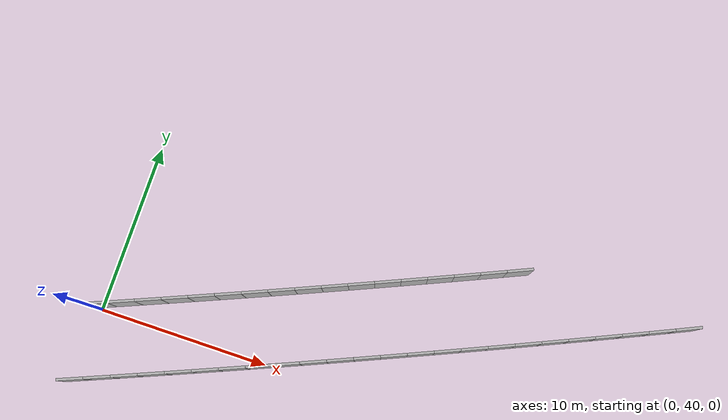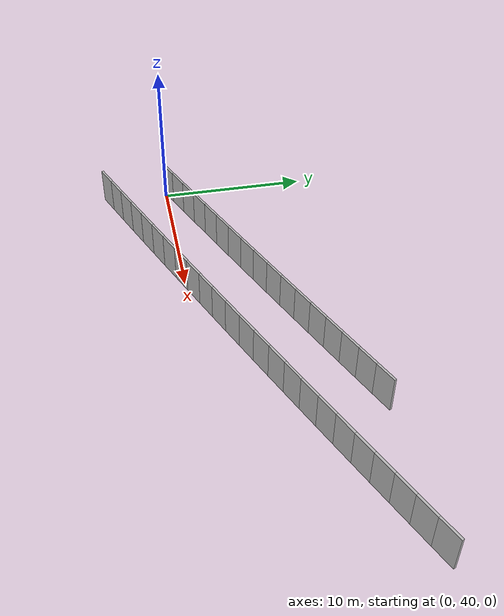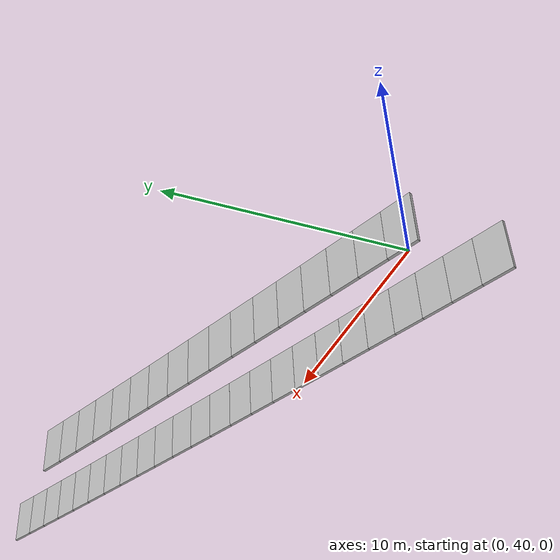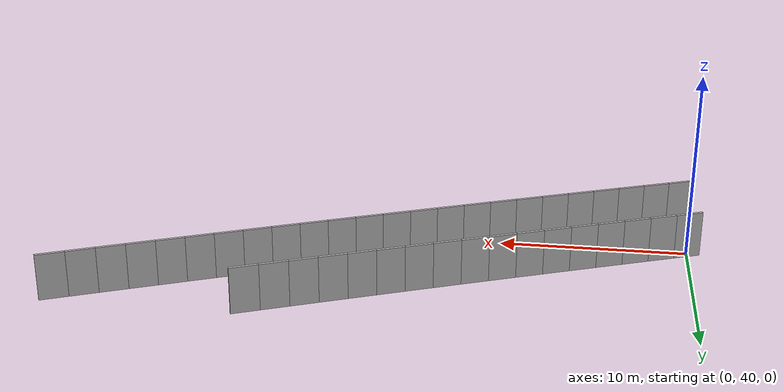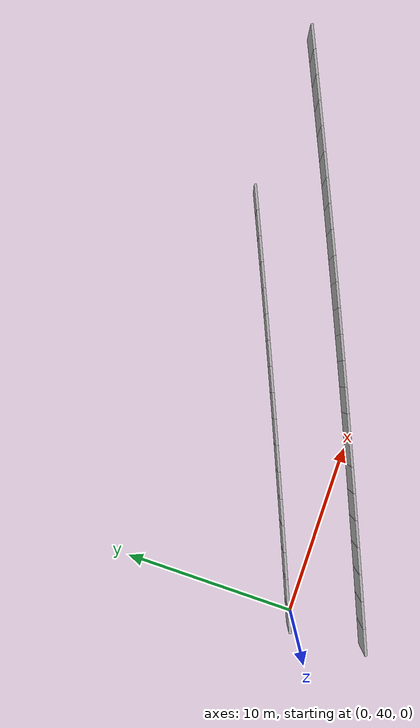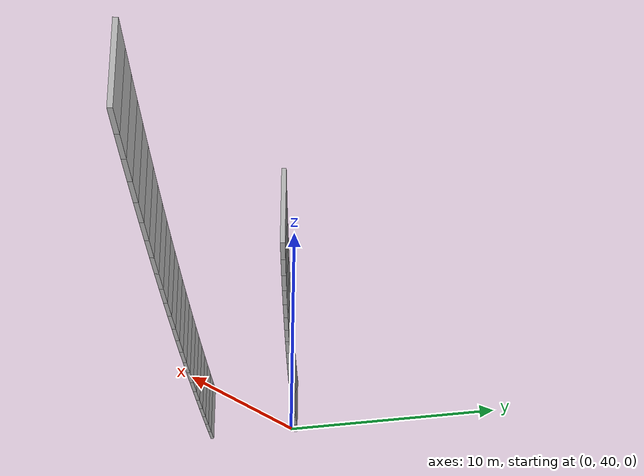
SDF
<?xml version="1.0" ?>
<sdf version="1.6">
  <model name="sps_3304">
    <pose frame="">0 0 0 0 -0 0</pose>
    <static>1</static>
    <self_collide>0</self_collide>
    <allow_auto_disable>0</allow_auto_disable>
    <link name="Wall3911">
      <kinematic>0</kinematic>
      <gravity>1</gravity>
      <self_collide>0</self_collide>
      <collision name="collision">
        <geometry>
          <box>
            <size>1.4965 0.15 2.5</size>
          </box>
        </geometry>
        <pose frame="">0 0 0 0 -0 0</pose>
      </collision>
      <visual name="visual">
        <geometry>
          <box>
            <size>1.4965 0.15 2.5</size>
          </box>
        </geometry>
        <pose frame="">0 0 0 0 -0 0</pose>
        <cast_shadows>1</cast_shadows>
        <transparency>0.0</transparency>
      </visual>
      <pose frame="">0.0397561 40.2204 1.25 0 -0 0.390587</pose>
    </link>
    <link name="Wall3912">
      <kinematic>0</kinematic>
      <gravity>1</gravity>
      <self_collide>0</self_collide>
      <collision name="collision">
        <geometry>
          <box>
            <size>1.49653 0.15 2.5</size>
          </box>
        </geometry>
        <pose frame="">0 0 0 0 -0 0</pose>
      </collision>
      <visual name="visual">
        <geometry>
          <box>
            <size>1.49653 0.15 2.5</size>
          </box>
        </geometry>
        <pose frame="">0 0 0 0 -0 0</pose>
        <cast_shadows>1</cast_shadows>
        <transparency>0.0</transparency>
      </visual>
      <pose frame="">1.42306 40.7914 1.25 0 -0 0.392344</pose>
    </link>
    <link name="Wall3913">
      <kinematic>0</kinematic>
      <gravity>1</gravity>
      <self_collide>0</self_collide>
      <collision name="collision">
        <geometry>
          <box>
            <size>1.49641 0.15 2.5</size>
          </box>
        </geometry>
        <pose frame="">0 0 0 0 -0 0</pose>
      </collision>
      <visual name="visual">
        <geometry>
          <box>
            <size>1.49641 0.15 2.5</size>
          </box>
        </geometry>
        <pose frame="">0 0 0 0 -0 0</pose>
        <cast_shadows>1</cast_shadows>
        <transparency>0.0</transparency>
      </visual>
      <pose frame="">2.80535 41.3647 1.25 0 -0 0.393966</pose>
    </link>
    <link name="Wall3914">
      <kinematic>0</kinematic>
      <gravity>1</gravity>
      <self_collide>0</self_collide>
      <collision name="collision">
        <geometry>
          <box>
            <size>1.49658 0.15 2.5</size>
          </box>
        </geometry>
        <pose frame="">0 0 0 0 -0 0</pose>
      </collision>
      <visual name="visual">
        <geometry>
          <box>
            <size>1.49658 0.15 2.5</size>
          </box>
        </geometry>
        <pose frame="">0 0 0 0 -0 0</pose>
        <cast_shadows>1</cast_shadows>
        <transparency>0.0</transparency>
      </visual>
      <pose frame="">4.18676 41.9402 1.25 0 -0 0.39551</pose>
    </link>
    <link name="Wall3915">
      <kinematic>0</kinematic>
      <gravity>1</gravity>
      <self_collide>0</self_collide>
      <collision name="collision">
        <geometry>
          <box>
            <size>1.49657 0.15 2.5</size>
          </box>
        </geometry>
        <pose frame="">0 0 0 0 -0 0</pose>
      </collision>
      <visual name="visual">
        <geometry>
          <box>
            <size>1.49657 0.15 2.5</size>
          </box>
        </geometry>
        <pose frame="">0 0 0 0 -0 0</pose>
        <cast_shadows>1</cast_shadows>
        <transparency>0.0</transparency>
      </visual>
      <pose frame="">5.56737 42.5178 1.25 0 -0 0.396971</pose>
    </link>
    <link name="Wall3916">
      <kinematic>0</kinematic>
      <gravity>1</gravity>
      <self_collide>0</self_collide>
      <collision name="collision">
        <geometry>
          <box>
            <size>1.49652 0.15 2.5</size>
          </box>
        </geometry>
        <pose frame="">0 0 0 0 -0 0</pose>
      </collision>
      <visual name="visual">
        <geometry>
          <box>
            <size>1.49652 0.15 2.5</size>
          </box>
        </geometry>
        <pose frame="">0 0 0 0 -0 0</pose>
        <cast_shadows>1</cast_shadows>
        <transparency>0.0</transparency>
      </visual>
      <pose frame="">6.94707 43.0975 1.25 0 -0 0.398578</pose>
    </link>
    <link name="Wall3917">
      <kinematic>0</kinematic>
      <gravity>1</gravity>
      <self_collide>0</self_collide>
      <collision name="collision">
        <geometry>
          <box>
            <size>1.49651 0.15 2.5</size>
          </box>
        </geometry>
        <pose frame="">0 0 0 0 -0 0</pose>
      </collision>
      <visual name="visual">
        <geometry>
          <box>
            <size>1.49651 0.15 2.5</size>
          </box>
        </geometry>
        <pose frame="">0 0 0 0 -0 0</pose>
        <cast_shadows>1</cast_shadows>
        <transparency>0.0</transparency>
      </visual>
      <pose frame="">8.32586 43.6793 1.25 0 -0 0.40004</pose>
    </link>
    <link name="Wall3918">
      <kinematic>0</kinematic>
      <gravity>1</gravity>
      <self_collide>0</self_collide>
      <collision name="collision">
        <geometry>
          <box>
            <size>1.49637 0.15 2.5</size>
          </box>
        </geometry>
        <pose frame="">0 0 0 0 -0 0</pose>
      </collision>
      <visual name="visual">
        <geometry>
          <box>
            <size>1.49637 0.15 2.5</size>
          </box>
        </geometry>
        <pose frame="">0 0 0 0 -0 0</pose>
        <cast_shadows>1</cast_shadows>
        <transparency>0.0</transparency>
      </visual>
      <pose frame="">9.70364 44.2633 1.25 0 -0 0.401807</pose>
    </link>
    <link name="Wall3919">
      <kinematic>0</kinematic>
      <gravity>1</gravity>
      <self_collide>0</self_collide>
      <collision name="collision">
        <geometry>
          <box>
            <size>1.49671 0.15 2.5</size>
          </box>
        </geometry>
        <pose frame="">0 0 0 0 -0 0</pose>
      </collision>
      <visual name="visual">
        <geometry>
          <box>
            <size>1.49671 0.15 2.5</size>
          </box>
        </geometry>
        <pose frame="">0 0 0 0 -0 0</pose>
        <cast_shadows>1</cast_shadows>
        <transparency>0.0</transparency>
      </visual>
      <pose frame="">11.0806 44.8496 1.25 0 -0 0.403264</pose>
    </link>
    <link name="Wall3920">
      <kinematic>0</kinematic>
      <gravity>1</gravity>
      <self_collide>0</self_collide>
      <collision name="collision">
        <geometry>
          <box>
            <size>1.49658 0.15 2.5</size>
          </box>
        </geometry>
        <pose frame="">0 0 0 0 -0 0</pose>
      </collision>
      <visual name="visual">
        <geometry>
          <box>
            <size>1.49658 0.15 2.5</size>
          </box>
        </geometry>
        <pose frame="">0 0 0 0 -0 0</pose>
        <cast_shadows>1</cast_shadows>
        <transparency>0.0</transparency>
      </visual>
      <pose frame="">12.4567 45.4381 1.25 0 -0 0.40494</pose>
    </link>
    <link name="Wall3921">
      <kinematic>0</kinematic>
      <gravity>1</gravity>
      <self_collide>0</self_collide>
      <collision name="collision">
        <geometry>
          <box>
            <size>1.49647 0.15 2.5</size>
          </box>
        </geometry>
        <pose frame="">0 0 0 0 -0 0</pose>
      </collision>
      <visual name="visual">
        <geometry>
          <box>
            <size>1.49647 0.15 2.5</size>
          </box>
        </geometry>
        <pose frame="">0 0 0 0 -0 0</pose>
        <cast_shadows>1</cast_shadows>
        <transparency>0.0</transparency>
      </visual>
      <pose frame="">13.8317 46.0288 1.25 0 -0 0.406616</pose>
    </link>
    <link name="Wall3922">
      <kinematic>0</kinematic>
      <gravity>1</gravity>
      <self_collide>0</self_collide>
      <collision name="collision">
        <geometry>
          <box>
            <size>1.49653 0.15 2.5</size>
          </box>
        </geometry>
        <pose frame="">0 0 0 0 -0 0</pose>
      </collision>
      <visual name="visual">
        <geometry>
          <box>
            <size>1.49653 0.15 2.5</size>
          </box>
        </geometry>
        <pose frame="">0 0 0 0 -0 0</pose>
        <cast_shadows>1</cast_shadows>
        <transparency>0.0</transparency>
      </visual>
      <pose frame="">15.2057 46.6217 1.25 0 -0 0.408153</pose>
    </link>
    <link name="Wall3923">
      <kinematic>0</kinematic>
      <gravity>1</gravity>
      <self_collide>0</self_collide>
      <collision name="collision">
        <geometry>
          <box>
            <size>1.49635 0.15 2.5</size>
          </box>
        </geometry>
        <pose frame="">0 0 0 0 -0 0</pose>
      </collision>
      <visual name="visual">
        <geometry>
          <box>
            <size>1.49635 0.15 2.5</size>
          </box>
        </geometry>
        <pose frame="">0 0 0 0 -0 0</pose>
        <cast_shadows>1</cast_shadows>
        <transparency>0.0</transparency>
      </visual>
      <pose frame="">16.5788 47.2167 1.25 0 -0 0.409626</pose>
    </link>
    <link name="Wall3924">
      <kinematic>0</kinematic>
      <gravity>1</gravity>
      <self_collide>0</self_collide>
      <collision name="collision">
        <geometry>
          <box>
            <size>1.49668 0.15 2.5</size>
          </box>
        </geometry>
        <pose frame="">0 0 0 0 -0 0</pose>
      </collision>
      <visual name="visual">
        <geometry>
          <box>
            <size>1.49668 0.15 2.5</size>
          </box>
        </geometry>
        <pose frame="">0 0 0 0 -0 0</pose>
        <cast_shadows>1</cast_shadows>
        <transparency>0.0</transparency>
      </visual>
      <pose frame="">17.9509 47.8139 1.25 0 -0 0.411355</pose>
    </link>
    <link name="Wall3925">
      <kinematic>0</kinematic>
      <gravity>1</gravity>
      <self_collide>0</self_collide>
      <collision name="collision">
        <geometry>
          <box>
            <size>1.49668 0.15 2.5</size>
          </box>
        </geometry>
        <pose frame="">0 0 0 0 -0 0</pose>
      </collision>
      <visual name="visual">
        <geometry>
          <box>
            <size>1.49668 0.15 2.5</size>
          </box>
        </geometry>
        <pose frame="">0 0 0 0 -0 0</pose>
        <cast_shadows>1</cast_shadows>
        <transparency>0.0</transparency>
      </visual>
      <pose frame="">19.3223 48.4133 1.25 0 -0 0.412779</pose>
    </link>
    <link name="Wall3926">
      <kinematic>0</kinematic>
      <gravity>1</gravity>
      <self_collide>0</self_collide>
      <collision name="collision">
        <geometry>
          <box>
            <size>1.4965 0.15 2.5</size>
          </box>
        </geometry>
        <pose frame="">0 0 0 0 -0 0</pose>
      </collision>
      <visual name="visual">
        <geometry>
          <box>
            <size>1.4965 0.15 2.5</size>
          </box>
        </geometry>
        <pose frame="">0 0 0 0 -0 0</pose>
        <cast_shadows>1</cast_shadows>
        <transparency>0.0</transparency>
      </visual>
      <pose frame="">20.6927 49.0148 1.25 0 -0 0.414435</pose>
    </link>
    <link name="Wall3927">
      <kinematic>0</kinematic>
      <gravity>1</gravity>
      <self_collide>0</self_collide>
      <collision name="collision">
        <geometry>
          <box>
            <size>1.49649 0.15 2.5</size>
          </box>
        </geometry>
        <pose frame="">0 0 0 0 -0 0</pose>
      </collision>
      <visual name="visual">
        <geometry>
          <box>
            <size>1.49649 0.15 2.5</size>
          </box>
        </geometry>
        <pose frame="">0 0 0 0 -0 0</pose>
        <cast_shadows>1</cast_shadows>
        <transparency>0.0</transparency>
      </visual>
      <pose frame="">22.0621 49.6185 1.25 0 -0 0.416042</pose>
    </link>
    <link name="Wall7685">
      <kinematic>0</kinematic>
      <gravity>1</gravity>
      <self_collide>0</self_collide>
      <collision name="collision">
        <geometry>
          <box>
            <size>1.50298 0.15 2.5</size>
          </box>
        </geometry>
        <pose frame="">0 0 0 0 -0 0</pose>
      </collision>
      <visual name="visual">
        <geometry>
          <box>
            <size>1.50298 0.15 2.5</size>
          </box>
        </geometry>
        <pose frame="">0 0 0 0 -0 0</pose>
        <cast_shadows>1</cast_shadows>
        <transparency>0.0</transparency>
      </visual>
      <pose frame="">0.228355 35.8216 1.25 0 -0 0.389118</pose>
    </link>
    <link name="Wall7686">
      <kinematic>0</kinematic>
      <gravity>1</gravity>
      <self_collide>0</self_collide>
      <collision name="collision">
        <geometry>
          <box>
            <size>1.50303 0.15 2.5</size>
          </box>
        </geometry>
        <pose frame="">0 0 0 0 -0 0</pose>
      </collision>
      <visual name="visual">
        <geometry>
          <box>
            <size>1.50303 0.15 2.5</size>
          </box>
        </geometry>
        <pose frame="">0 0 0 0 -0 0</pose>
        <cast_shadows>1</cast_shadows>
        <transparency>0.0</transparency>
      </visual>
      <pose frame="">1.61855 36.3929 1.25 0 -0 0.390687</pose>
    </link>
    <link name="Wall7687">
      <kinematic>0</kinematic>
      <gravity>1</gravity>
      <self_collide>0</self_collide>
      <collision name="collision">
        <geometry>
          <box>
            <size>1.50319 0.15 2.5</size>
          </box>
        </geometry>
        <pose frame="">0 0 0 0 -0 0</pose>
      </collision>
      <visual name="visual">
        <geometry>
          <box>
            <size>1.50319 0.15 2.5</size>
          </box>
        </geometry>
        <pose frame="">0 0 0 0 -0 0</pose>
        <cast_shadows>1</cast_shadows>
        <transparency>0.0</transparency>
      </visual>
      <pose frame="">3.00796 36.9664 1.25 0 -0 0.392224</pose>
    </link>
    <link name="Wall7688">
      <kinematic>0</kinematic>
      <gravity>1</gravity>
      <self_collide>0</self_collide>
      <collision name="collision">
        <geometry>
          <box>
            <size>1.50309 0.15 2.5</size>
          </box>
        </geometry>
        <pose frame="">0 0 0 0 -0 0</pose>
      </collision>
      <visual name="visual">
        <geometry>
          <box>
            <size>1.50309 0.15 2.5</size>
          </box>
        </geometry>
        <pose frame="">0 0 0 0 -0 0</pose>
        <cast_shadows>1</cast_shadows>
        <transparency>0.0</transparency>
      </visual>
      <pose frame="">4.39648 37.5421 1.25 0 -0 0.393876</pose>
    </link>
    <link name="Wall7689">
      <kinematic>0</kinematic>
      <gravity>1</gravity>
      <self_collide>0</self_collide>
      <collision name="collision">
        <geometry>
          <box>
            <size>1.50296 0.15 2.5</size>
          </box>
        </geometry>
        <pose frame="">0 0 0 0 -0 0</pose>
      </collision>
      <visual name="visual">
        <geometry>
          <box>
            <size>1.50296 0.15 2.5</size>
          </box>
        </geometry>
        <pose frame="">0 0 0 0 -0 0</pose>
        <cast_shadows>1</cast_shadows>
        <transparency>0.0</transparency>
      </visual>
      <pose frame="">5.78396 38.12 1.25 0 -0 0.395453</pose>
    </link>
    <link name="Wall7690">
      <kinematic>0</kinematic>
      <gravity>1</gravity>
      <self_collide>0</self_collide>
      <collision name="collision">
        <geometry>
          <box>
            <size>1.50313 0.15 2.5</size>
          </box>
        </geometry>
        <pose frame="">0 0 0 0 -0 0</pose>
      </collision>
      <visual name="visual">
        <geometry>
          <box>
            <size>1.50313 0.15 2.5</size>
          </box>
        </geometry>
        <pose frame="">0 0 0 0 -0 0</pose>
        <cast_shadows>1</cast_shadows>
        <transparency>0.0</transparency>
      </visual>
      <pose frame="">7.17055 38.7001 1.25 0 -0 0.39699</pose>
    </link>
    <link name="Wall7691">
      <kinematic>0</kinematic>
      <gravity>1</gravity>
      <self_collide>0</self_collide>
      <collision name="collision">
        <geometry>
          <box>
            <size>1.50305 0.15 2.5</size>
          </box>
        </geometry>
        <pose frame="">0 0 0 0 -0 0</pose>
      </collision>
      <visual name="visual">
        <geometry>
          <box>
            <size>1.50305 0.15 2.5</size>
          </box>
        </geometry>
        <pose frame="">0 0 0 0 -0 0</pose>
        <cast_shadows>1</cast_shadows>
        <transparency>0.0</transparency>
      </visual>
      <pose frame="">8.55627 39.2824 1.25 0 -0 0.398643</pose>
    </link>
    <link name="Wall7692">
      <kinematic>0</kinematic>
      <gravity>1</gravity>
      <self_collide>0</self_collide>
      <collision name="collision">
        <geometry>
          <box>
            <size>1.50291 0.15 2.5</size>
          </box>
        </geometry>
        <pose frame="">0 0 0 0 -0 0</pose>
      </collision>
      <visual name="visual">
        <geometry>
          <box>
            <size>1.50291 0.15 2.5</size>
          </box>
        </geometry>
        <pose frame="">0 0 0 0 -0 0</pose>
        <cast_shadows>1</cast_shadows>
        <transparency>0.0</transparency>
      </visual>
      <pose frame="">9.94097 39.8668 1.25 0 -0 0.400092</pose>
    </link>
    <link name="Wall7693">
      <kinematic>0</kinematic>
      <gravity>1</gravity>
      <self_collide>0</self_collide>
      <collision name="collision">
        <geometry>
          <box>
            <size>1.50305 0.15 2.5</size>
          </box>
        </geometry>
        <pose frame="">0 0 0 0 -0 0</pose>
      </collision>
      <visual name="visual">
        <geometry>
          <box>
            <size>1.50305 0.15 2.5</size>
          </box>
        </geometry>
        <pose frame="">0 0 0 0 -0 0</pose>
        <cast_shadows>1</cast_shadows>
        <transparency>0.0</transparency>
      </visual>
      <pose frame="">11.3248 40.4534 1.25 0 -0 0.401773</pose>
    </link>
    <link name="Wall7694">
      <kinematic>0</kinematic>
      <gravity>1</gravity>
      <self_collide>0</self_collide>
      <collision name="collision">
        <geometry>
          <box>
            <size>1.50326 0.15 2.5</size>
          </box>
        </geometry>
        <pose frame="">0 0 0 0 -0 0</pose>
      </collision>
      <visual name="visual">
        <geometry>
          <box>
            <size>1.50326 0.15 2.5</size>
          </box>
        </geometry>
        <pose frame="">0 0 0 0 -0 0</pose>
        <cast_shadows>1</cast_shadows>
        <transparency>0.0</transparency>
      </visual>
      <pose frame="">12.7078 41.0423 1.25 0 -0 0.403346</pose>
    </link>
    <link name="Wall7695">
      <kinematic>0</kinematic>
      <gravity>1</gravity>
      <self_collide>0</self_collide>
      <collision name="collision">
        <geometry>
          <box>
            <size>1.50317 0.15 2.5</size>
          </box>
        </geometry>
        <pose frame="">0 0 0 0 -0 0</pose>
      </collision>
      <visual name="visual">
        <geometry>
          <box>
            <size>1.50317 0.15 2.5</size>
          </box>
        </geometry>
        <pose frame="">0 0 0 0 -0 0</pose>
        <cast_shadows>1</cast_shadows>
        <transparency>0.0</transparency>
      </visual>
      <pose frame="">14.0899 41.6334 1.25 0 -0 0.404961</pose>
    </link>
    <link name="Wall7696">
      <kinematic>0</kinematic>
      <gravity>1</gravity>
      <self_collide>0</self_collide>
      <collision name="collision">
        <geometry>
          <box>
            <size>1.50289 0.15 2.5</size>
          </box>
        </geometry>
        <pose frame="">0 0 0 0 -0 0</pose>
      </collision>
      <visual name="visual">
        <geometry>
          <box>
            <size>1.50289 0.15 2.5</size>
          </box>
        </geometry>
        <pose frame="">0 0 0 0 -0 0</pose>
        <cast_shadows>1</cast_shadows>
        <transparency>0.0</transparency>
      </visual>
      <pose frame="">15.4708 42.2267 1.25 0 -0 0.406588</pose>
    </link>
    <link name="Wall7697">
      <kinematic>0</kinematic>
      <gravity>1</gravity>
      <self_collide>0</self_collide>
      <collision name="collision">
        <geometry>
          <box>
            <size>1.50328 0.15 2.5</size>
          </box>
        </geometry>
        <pose frame="">0 0 0 0 -0 0</pose>
      </collision>
      <visual name="visual">
        <geometry>
          <box>
            <size>1.50328 0.15 2.5</size>
          </box>
        </geometry>
        <pose frame="">0 0 0 0 -0 0</pose>
        <cast_shadows>1</cast_shadows>
        <transparency>0.0</transparency>
      </visual>
      <pose frame="">16.8509 42.8222 1.25 0 -0 0.408112</pose>
    </link>
    <link name="Wall7698">
      <kinematic>0</kinematic>
      <gravity>1</gravity>
      <self_collide>0</self_collide>
      <collision name="collision">
        <geometry>
          <box>
            <size>1.50304 0.15 2.5</size>
          </box>
        </geometry>
        <pose frame="">0 0 0 0 -0 0</pose>
      </collision>
      <visual name="visual">
        <geometry>
          <box>
            <size>1.50304 0.15 2.5</size>
          </box>
        </geometry>
        <pose frame="">0 0 0 0 -0 0</pose>
        <cast_shadows>1</cast_shadows>
        <transparency>0.0</transparency>
      </visual>
      <pose frame="">18.2302 43.4199 1.25 0 -0 0.409776</pose>
    </link>
    <link name="Wall7699">
      <kinematic>0</kinematic>
      <gravity>1</gravity>
      <self_collide>0</self_collide>
      <collision name="collision">
        <geometry>
          <box>
            <size>1.50316 0.15 2.5</size>
          </box>
        </geometry>
        <pose frame="">0 0 0 0 -0 0</pose>
      </collision>
      <visual name="visual">
        <geometry>
          <box>
            <size>1.50316 0.15 2.5</size>
          </box>
        </geometry>
        <pose frame="">0 0 0 0 -0 0</pose>
        <cast_shadows>1</cast_shadows>
        <transparency>0.0</transparency>
      </visual>
      <pose frame="">19.6084 44.0198 1.25 0 -0 0.41129</pose>
    </link>
    <link name="Wall7700">
      <kinematic>0</kinematic>
      <gravity>1</gravity>
      <self_collide>0</self_collide>
      <collision name="collision">
        <geometry>
          <box>
            <size>1.50304 0.15 2.5</size>
          </box>
        </geometry>
        <pose frame="">0 0 0 0 -0 0</pose>
      </collision>
      <visual name="visual">
        <geometry>
          <box>
            <size>1.50304 0.15 2.5</size>
          </box>
        </geometry>
        <pose frame="">0 0 0 0 -0 0</pose>
        <cast_shadows>1</cast_shadows>
        <transparency>0.0</transparency>
      </visual>
      <pose frame="">20.9856 44.6218 1.25 0 -0 0.412831</pose>
    </link>
    <link name="Wall7701">
      <kinematic>0</kinematic>
      <gravity>1</gravity>
      <self_collide>0</self_collide>
      <collision name="collision">
        <geometry>
          <box>
            <size>1.50311 0.15 2.5</size>
          </box>
        </geometry>
        <pose frame="">0 0 0 0 -0 0</pose>
      </collision>
      <visual name="visual">
        <geometry>
          <box>
            <size>1.50311 0.15 2.5</size>
          </box>
        </geometry>
        <pose frame="">0 0 0 0 -0 0</pose>
        <cast_shadows>1</cast_shadows>
        <transparency>0.0</transparency>
      </visual>
      <pose frame="">22.3619 45.226 1.25 0 -0 0.414543</pose>
    </link>
    <link name="Wall7702">
      <kinematic>0</kinematic>
      <gravity>1</gravity>
      <self_collide>0</self_collide>
      <collision name="collision">
        <geometry>
          <box>
            <size>1.50302 0.15 2.5</size>
          </box>
        </geometry>
        <pose frame="">0 0 0 0 -0 0</pose>
      </collision>
      <visual name="visual">
        <geometry>
          <box>
            <size>1.50302 0.15 2.5</size>
          </box>
        </geometry>
        <pose frame="">0 0 0 0 -0 0</pose>
        <cast_shadows>1</cast_shadows>
        <transparency>0.0</transparency>
      </visual>
      <pose frame="">23.7372 45.8324 1.25 0 -0 0.416031</pose>
    </link>
    <link name="Wall7703">
      <kinematic>0</kinematic>
      <gravity>1</gravity>
      <self_collide>0</self_collide>
      <collision name="collision">
        <geometry>
          <box>
            <size>1.50316 0.15 2.5</size>
          </box>
        </geometry>
        <pose frame="">0 0 0 0 -0 0</pose>
      </collision>
      <visual name="visual">
        <geometry>
          <box>
            <size>1.50316 0.15 2.5</size>
          </box>
        </geometry>
        <pose frame="">0 0 0 0 -0 0</pose>
        <cast_shadows>1</cast_shadows>
        <transparency>0.0</transparency>
      </visual>
      <pose frame="">25.1117 46.4409 1.25 0 -0 0.417544</pose>
    </link>
    <link name="Wall7704">
      <kinematic>0</kinematic>
      <gravity>1</gravity>
      <self_collide>0</self_collide>
      <collision name="collision">
        <geometry>
          <box>
            <size>1.50306 0.15 2.5</size>
          </box>
        </geometry>
        <pose frame="">0 0 0 0 -0 0</pose>
      </collision>
      <visual name="visual">
        <geometry>
          <box>
            <size>1.50306 0.15 2.5</size>
          </box>
        </geometry>
        <pose frame="">0 0 0 0 -0 0</pose>
        <cast_shadows>1</cast_shadows>
        <transparency>0.0</transparency>
      </visual>
      <pose frame="">26.4852 47.0515 1.25 0 -0 0.419086</pose>
    </link>
    <link name="Wall7705">
      <kinematic>0</kinematic>
      <gravity>1</gravity>
      <self_collide>0</self_collide>
      <collision name="collision">
        <geometry>
          <box>
            <size>1.50311 0.15 2.5</size>
          </box>
        </geometry>
        <pose frame="">0 0 0 0 -0 0</pose>
      </collision>
      <visual name="visual">
        <geometry>
          <box>
            <size>1.50311 0.15 2.5</size>
          </box>
        </geometry>
        <pose frame="">0 0 0 0 -0 0</pose>
        <cast_shadows>1</cast_shadows>
        <transparency>0.0</transparency>
      </visual>
      <pose frame="">27.8577 47.6643 1.25 0 -0 0.42076</pose>
    </link>
    <link name="Wall7706">
      <kinematic>0</kinematic>
      <gravity>1</gravity>
      <self_collide>0</self_collide>
      <collision name="collision">
        <geometry>
          <box>
            <size>1.50309 0.15 2.5</size>
          </box>
        </geometry>
        <pose frame="">0 0 0 0 -0 0</pose>
      </collision>
      <visual name="visual">
        <geometry>
          <box>
            <size>1.50309 0.15 2.5</size>
          </box>
        </geometry>
        <pose frame="">0 0 0 0 -0 0</pose>
        <cast_shadows>1</cast_shadows>
        <transparency>0.0</transparency>
      </visual>
      <pose frame="">29.2291 48.2794 1.25 0 -0 0.422413</pose>
    </link>
    <link name="Wall7707">
      <kinematic>0</kinematic>
      <gravity>1</gravity>
      <self_collide>0</self_collide>
      <collision name="collision">
        <geometry>
          <box>
            <size>1.50303 0.15 2.5</size>
          </box>
        </geometry>
        <pose frame="">0 0 0 0 -0 0</pose>
      </collision>
      <visual name="visual">
        <geometry>
          <box>
            <size>1.50303 0.15 2.5</size>
          </box>
        </geometry>
        <pose frame="">0 0 0 0 -0 0</pose>
        <cast_shadows>1</cast_shadows>
        <transparency>0.0</transparency>
      </visual>
      <pose frame="">30.5996 48.8966 1.25 0 -0 0.423902</pose>
    </link>
    <link name="Wall7708">
      <kinematic>0</kinematic>
      <gravity>1</gravity>
      <self_collide>0</self_collide>
      <collision name="collision">
        <geometry>
          <box>
            <size>1.50312 0.15 2.5</size>
          </box>
        </geometry>
        <pose frame="">0 0 0 0 -0 0</pose>
      </collision>
      <visual name="visual">
        <geometry>
          <box>
            <size>1.50312 0.15 2.5</size>
          </box>
        </geometry>
        <pose frame="">0 0 0 0 -0 0</pose>
        <cast_shadows>1</cast_shadows>
        <transparency>0.0</transparency>
      </visual>
      <pose frame="">31.9691 49.516 1.25 0 -0 0.425613</pose>
    </link>
  </model>
</sdf>
